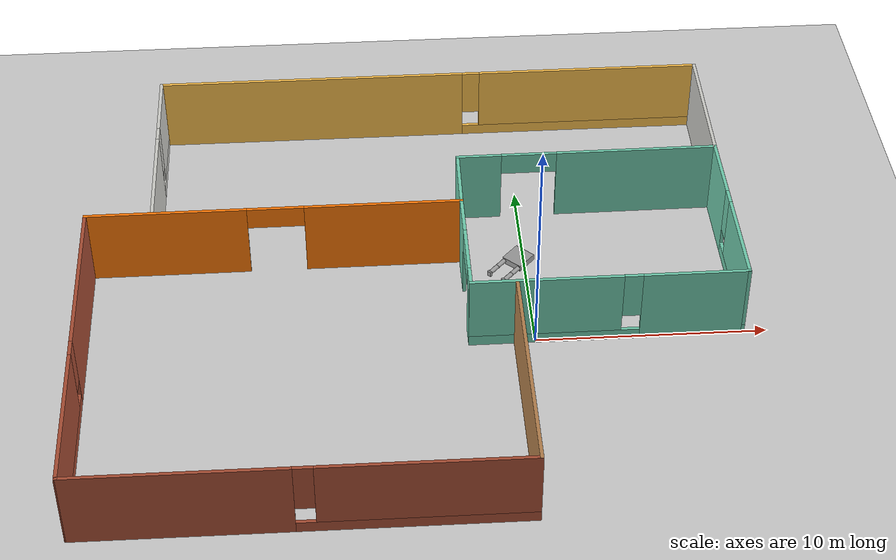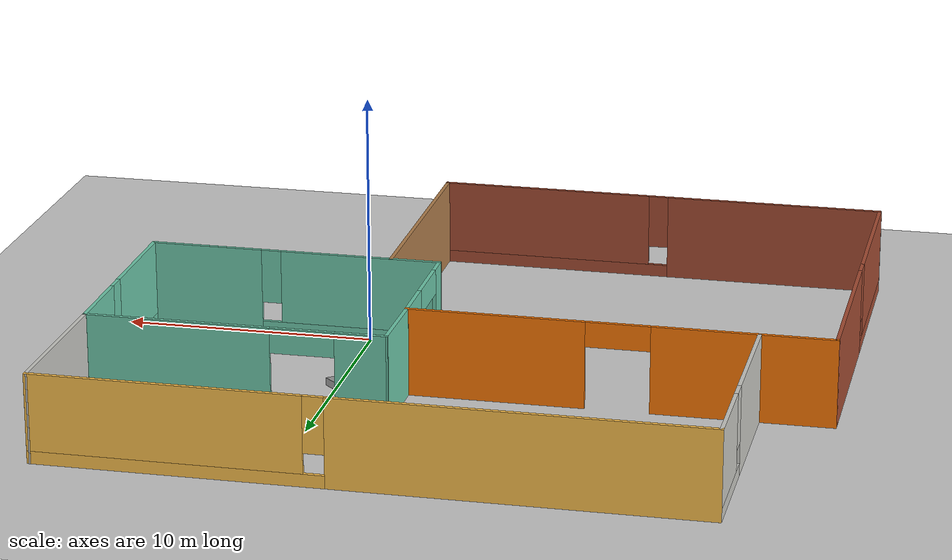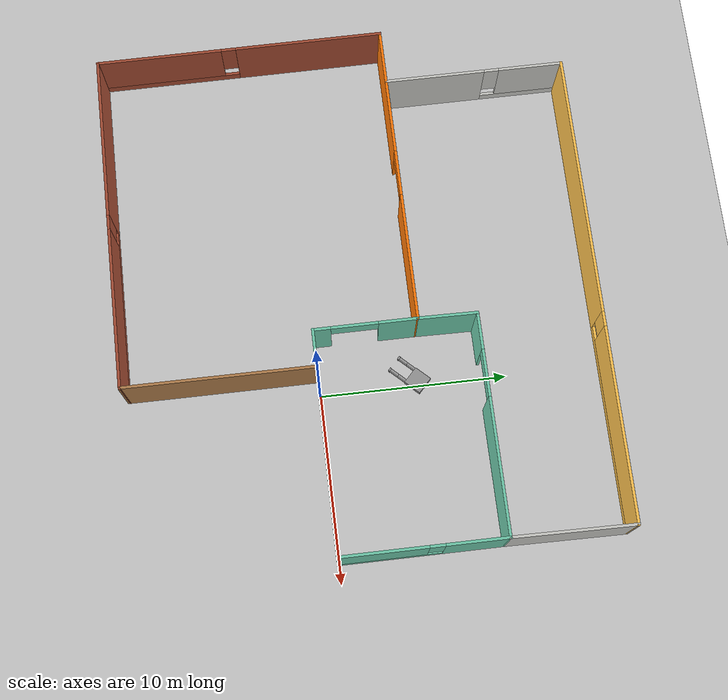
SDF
<sdf version="1.6">
 <world name="default">
  <model name="ground_plane">
   <static>1</static>
   <link name="link">
    <collision name="collision">
     <geometry><plane><normal>0 0 1</normal><size>100 100</size></plane></geometry>
     <surface><friction><ode><mu>100</mu><mu2>50</mu2></ode></friction></surface>
    </collision>
    <visual name="visual">
     <cast_shadows>0</cast_shadows>
     <geometry><plane><normal>0 0 1</normal><size>100 100</size></plane></geometry>
     <material>
      <script><uri>file://media/materials/scripts/gazebo.material</uri><name>Gazebo/Grey</name></script>
     </material>
    </visual>
   </link>
  </model>
  <model name="HumanoidRobot">
   <link name="link_0">
    <pose>-1.22891 3.55741 1.6 0 -0 0</pose>
    <inertial>
     <mass>1</mass>
     <inertia>
      <ixx>0.166667</ixx>
      <ixy>0</ixy>
      <ixz>0</ixz>
      <iyy>0.166667</iyy>
      <iyz>0</iyz>
      <izz>0.166667</izz>
     </inertia>
    </inertial>
    <visual name="visual">
     <geometry><box><size>0.3 1 1</size></box></geometry>
     <material>
      <lighting>1</lighting>
      <script><uri>file://media/materials/scripts/gazebo.material</uri><name>Gazebo/Grey</name></script>
      <shader type="pixel"><normal_map>__default__</normal_map></shader>
      <ambient>0.3 0.3 0.3 1</ambient>
      <diffuse>0.7 0.7 0.7 1</diffuse>
      <specular>0.01 0.01 0.01 1</specular>
      <emissive>0 0 0 1</emissive>
     </material>
    </visual>
    <collision name="collision">
     <geometry><box><size>0.3 1 1</size></box></geometry>
     <surface>
      <friction>
       <ode><mu>1</mu><mu2>1</mu2><fdir1>0 0 0</fdir1><slip1>0</slip1><slip2>0</slip2></ode>
       <torsional>
        <coefficient>1</coefficient>
        <patch_radius>0</patch_radius>
        <surface_radius>0</surface_radius>
        <use_patch_radius>1</use_patch_radius>
        <ode><slip>0</slip></ode>
       </torsional>
      </friction>
      <bounce><restitution_coefficient>0</restitution_coefficient><threshold>1e+06</threshold></bounce>
      <contact>
       <collide_without_contact>0</collide_without_contact>
       <collide_without_contact_bitmask>1</collide_without_contact_bitmask>
       <collide_bitmask>1</collide_bitmask>
       <ode>
        <soft_cfm>0</soft_cfm>
        <soft_erp>0.2</soft_erp>
        <kp>1e+13</kp>
        <kd>1</kd>
        <max_vel>0.01</max_vel>
        <min_depth>0</min_depth>
       </ode>
       <bullet>
        <split_impulse>1</split_impulse>
        <split_impulse_penetration_threshold>-0.01</split_impulse_penetration_threshold>
        <soft_cfm>0</soft_cfm>
        <soft_erp>0.2</soft_erp>
        <kp>1e+13</kp>
        <kd>1</kd>
       </bullet>
      </contact>
     </surface>
    </collision>
   </link>
   <link name="link_1">
    <pose>-1.22891 3.15741 0.849998 0 -0 0</pose>
    <inertial>
     <mass>1</mass>
     <inertia><ixx>0.145833</ixx><ixy>0</ixy><ixz>0</ixz><iyy>0.145833</iyy><iyz>0</iyz><izz>0.125</izz></inertia>
    </inertial>
    <visual name="visual">
     <geometry><cylinder><radius>0.1</radius><length>0.5</length></cylinder></geometry>
     <material>
      <lighting>1</lighting>
      <script><uri>file://media/materials/scripts/gazebo.material</uri><name>Gazebo/Grey</name></script>
      <shader type="pixel"><normal_map>__default__</normal_map></shader>
      <ambient>0.3 0.3 0.3 1</ambient>
      <diffuse>0.7 0.7 0.7 1</diffuse>
      <specular>0.01 0.01 0.01 1</specular>
      <emissive>0 0 0 1</emissive>
     </material>
    </visual>
    <collision name="collision">
     <geometry><cylinder><radius>0.1</radius><length>0.5</length></cylinder></geometry>
     <surface>
      <friction>
       <ode><mu>1</mu><mu2>1</mu2><fdir1>0 0 0</fdir1><slip1>0</slip1><slip2>0</slip2></ode>
       <torsional>
        <coefficient>1</coefficient>
        <patch_radius>0</patch_radius>
        <surface_radius>0</surface_radius>
        <use_patch_radius>1</use_patch_radius>
        <ode><slip>0</slip></ode>
       </torsional>
      </friction>
      <bounce><restitution_coefficient>0</restitution_coefficient><threshold>1e+06</threshold></bounce>
      <contact>
       <collide_without_contact>0</collide_without_contact>
       <collide_without_contact_bitmask>1</collide_without_contact_bitmask>
       <collide_bitmask>1</collide_bitmask>
       <ode>
        <soft_cfm>0</soft_cfm>
        <soft_erp>0.2</soft_erp>
        <kp>1e+13</kp>
        <kd>1</kd>
        <max_vel>0.01</max_vel>
        <min_depth>0</min_depth>
       </ode>
       <bullet>
        <split_impulse>1</split_impulse>
        <split_impulse_penetration_threshold>-0.01</split_impulse_penetration_threshold>
        <soft_cfm>0</soft_cfm>
        <soft_erp>0.2</soft_erp>
        <kp>1e+13</kp>
        <kd>1</kd>
       </bullet>
      </contact>
     </surface>
    </collision>
   </link>
   <link name="link_1_clone">
    <pose>-1.22891 3.95741 0.849998 0 -0 0</pose>
    <inertial>
     <mass>1</mass>
     <inertia><ixx>0.145833</ixx><ixy>0</ixy><ixz>0</ixz><iyy>0.145833</iyy><iyz>0</iyz><izz>0.125</izz></inertia>
    </inertial>
    <visual name="visual">
     <geometry><cylinder><radius>0.1</radius><length>0.5</length></cylinder></geometry>
     <material>
      <lighting>1</lighting>
      <script><uri>file://media/materials/scripts/gazebo.material</uri><name>Gazebo/Grey</name></script>
      <shader type="pixel"><normal_map>__default__</normal_map></shader>
      <ambient>0.3 0.3 0.3 1</ambient>
      <diffuse>0.7 0.7 0.7 1</diffuse>
      <specular>0.01 0.01 0.01 1</specular>
      <emissive>0 0 0 1</emissive>
     </material>
    </visual>
    <collision name="collision">
     <geometry><cylinder><radius>0.1</radius><length>0.5</length></cylinder></geometry>
     <surface>
      <friction>
       <ode><mu>1</mu><mu2>1</mu2><fdir1>0 0 0</fdir1><slip1>0</slip1><slip2>0</slip2></ode>
       <torsional>
        <coefficient>1</coefficient>
        <patch_radius>0</patch_radius>
        <surface_radius>0</surface_radius>
        <use_patch_radius>1</use_patch_radius>
        <ode><slip>0</slip></ode>
       </torsional>
      </friction>
      <bounce><restitution_coefficient>0</restitution_coefficient><threshold>1e+06</threshold></bounce>
      <contact>
       <collide_without_contact>0</collide_without_contact>
       <collide_without_contact_bitmask>1</collide_without_contact_bitmask>
       <collide_bitmask>1</collide_bitmask>
       <ode>
        <soft_cfm>0</soft_cfm>
        <soft_erp>0.2</soft_erp>
        <kp>1e+13</kp>
        <kd>1</kd>
        <max_vel>0.01</max_vel>
        <min_depth>0</min_depth>
       </ode>
       <bullet>
        <split_impulse>1</split_impulse>
        <split_impulse_penetration_threshold>-0.01</split_impulse_penetration_threshold>
        <soft_cfm>0</soft_cfm>
        <soft_erp>0.2</soft_erp>
        <kp>1e+13</kp>
        <kd>1</kd>
       </bullet>
      </contact>
     </surface>
    </collision>
   </link>
   <link name="link_1_clone_0">
    <pose>-1.22891 3.15741 0.349998 0 -0 0</pose>
    <inertial>
     <mass>1</mass>
     <inertia><ixx>0.145833</ixx><ixy>0</ixy><ixz>0</ixz><iyy>0.145833</iyy><iyz>0</iyz><izz>0.125</izz></inertia>
    </inertial>
    <visual name="visual">
     <geometry><cylinder><radius>0.1</radius><length>0.5</length></cylinder></geometry>
     <material>
      <lighting>1</lighting>
      <script><uri>file://media/materials/scripts/gazebo.material</uri><name>Gazebo/Grey</name></script>
      <shader type="pixel"><normal_map>__default__</normal_map></shader>
      <ambient>0.3 0.3 0.3 1</ambient>
      <diffuse>0.7 0.7 0.7 1</diffuse>
      <specular>0.01 0.01 0.01 1</specular>
      <emissive>0 0 0 1</emissive>
     </material>
    </visual>
    <collision name="collision">
     <geometry><cylinder><radius>0.1</radius><length>0.5</length></cylinder></geometry>
     <surface>
      <friction>
       <ode><mu>1</mu><mu2>1</mu2><fdir1>0 0 0</fdir1><slip1>0</slip1><slip2>0</slip2></ode>
       <torsional>
        <coefficient>1</coefficient>
        <patch_radius>0</patch_radius>
        <surface_radius>0</surface_radius>
        <use_patch_radius>1</use_patch_radius>
        <ode><slip>0</slip></ode>
       </torsional>
      </friction>
      <bounce><restitution_coefficient>0</restitution_coefficient><threshold>1e+06</threshold></bounce>
      <contact>
       <collide_without_contact>0</collide_without_contact>
       <collide_without_contact_bitmask>1</collide_without_contact_bitmask>
       <collide_bitmask>1</collide_bitmask>
       <ode>
        <soft_cfm>0</soft_cfm>
        <soft_erp>0.2</soft_erp>
        <kp>1e+13</kp>
        <kd>1</kd>
        <max_vel>0.01</max_vel>
        <min_depth>0</min_depth>
       </ode>
       <bullet>
        <split_impulse>1</split_impulse>
        <split_impulse_penetration_threshold>-0.01</split_impulse_penetration_threshold>
        <soft_cfm>0</soft_cfm>
        <soft_erp>0.2</soft_erp>
        <kp>1e+13</kp>
        <kd>1</kd>
       </bullet>
      </contact>
     </surface>
    </collision>
   </link>
   <link name="link_1_clone_1">
    <pose>-1.22891 3.95741 0.349998 0 -0 0</pose>
    <inertial>
     <mass>1</mass>
     <inertia><ixx>0.145833</ixx><ixy>0</ixy><ixz>0</ixz><iyy>0.145833</iyy><iyz>0</iyz><izz>0.125</izz></inertia>
    </inertial>
    <visual name="visual">
     <geometry><cylinder><radius>0.1</radius><length>0.5</length></cylinder></geometry>
     <material>
      <lighting>1</lighting>
      <script><uri>file://media/materials/scripts/gazebo.material</uri><name>Gazebo/Grey</name></script>
      <shader type="pixel"><normal_map>__default__</normal_map></shader>
      <ambient>0.3 0.3 0.3 1</ambient>
      <diffuse>0.7 0.7 0.7 1</diffuse>
      <specular>0.01 0.01 0.01 1</specular>
      <emissive>0 0 0 1</emissive>
     </material>
    </visual>
    <collision name="collision">
     <geometry><cylinder><radius>0.1</radius><length>0.5</length></cylinder></geometry>
     <surface>
      <friction>
       <ode><mu>1</mu><mu2>1</mu2><fdir1>0 0 0</fdir1><slip1>0</slip1><slip2>0</slip2></ode>
       <torsional>
        <coefficient>1</coefficient>
        <patch_radius>0</patch_radius>
        <surface_radius>0</surface_radius>
        <use_patch_radius>1</use_patch_radius>
        <ode><slip>0</slip></ode>
       </torsional>
      </friction>
      <bounce><restitution_coefficient>0</restitution_coefficient><threshold>1e+06</threshold></bounce>
      <contact>
       <collide_without_contact>0</collide_without_contact>
       <collide_without_contact_bitmask>1</collide_without_contact_bitmask>
       <collide_bitmask>1</collide_bitmask>
       <ode>
        <soft_cfm>0</soft_cfm>
        <soft_erp>0.2</soft_erp>
        <kp>1e+13</kp>
        <kd>1</kd>
        <max_vel>0.01</max_vel>
        <min_depth>0</min_depth>
       </ode>
       <bullet>
        <split_impulse>1</split_impulse>
        <split_impulse_penetration_threshold>-0.01</split_impulse_penetration_threshold>
        <soft_cfm>0</soft_cfm>
        <soft_erp>0.2</soft_erp>
        <kp>1e+13</kp>
        <kd>1</kd>
       </bullet>
      </contact>
     </surface>
    </collision>
   </link>
   <link name="link_4">
    <pose>-1.07891 3.95741 0.049998 0 -0 0</pose>
    <inertial>
     <mass>1</mass>
     <inertia>
      <ixx>0.166667</ixx>
      <ixy>0</ixy>
      <ixz>0</ixz>
      <iyy>0.166667</iyy>
      <iyz>0</iyz>
      <izz>0.166667</izz>
     </inertia>
    </inertial>
    <visual name="visual">
     <geometry><box><size>0.5 0.2 0.1</size></box></geometry>
     <material>
      <lighting>1</lighting>
      <script><uri>file://media/materials/scripts/gazebo.material</uri><name>Gazebo/Grey</name></script>
      <shader type="pixel"><normal_map>__default__</normal_map></shader>
      <ambient>0.3 0.3 0.3 1</ambient>
      <diffuse>0.7 0.7 0.7 1</diffuse>
      <specular>0.01 0.01 0.01 1</specular>
      <emissive>0 0 0 1</emissive>
     </material>
    </visual>
    <collision name="collision">
     <geometry><box><size>0.5 0.2 0.1</size></box></geometry>
     <surface>
      <friction>
       <ode><mu>1</mu><mu2>1</mu2><fdir1>0 0 0</fdir1><slip1>0</slip1><slip2>0</slip2></ode>
       <torsional>
        <coefficient>1</coefficient>
        <patch_radius>0</patch_radius>
        <surface_radius>0</surface_radius>
        <use_patch_radius>1</use_patch_radius>
        <ode><slip>0</slip></ode>
       </torsional>
      </friction>
      <bounce><restitution_coefficient>0</restitution_coefficient><threshold>1e+06</threshold></bounce>
      <contact>
       <collide_without_contact>0</collide_without_contact>
       <collide_without_contact_bitmask>1</collide_without_contact_bitmask>
       <collide_bitmask>1</collide_bitmask>
       <ode>
        <soft_cfm>0</soft_cfm>
        <soft_erp>0.2</soft_erp>
        <kp>1e+13</kp>
        <kd>1</kd>
        <max_vel>0.01</max_vel>
        <min_depth>0</min_depth>
       </ode>
       <bullet>
        <split_impulse>1</split_impulse>
        <split_impulse_penetration_threshold>-0.01</split_impulse_penetration_threshold>
        <soft_cfm>0</soft_cfm>
        <soft_erp>0.2</soft_erp>
        <kp>1e+13</kp>
        <kd>1</kd>
       </bullet>
      </contact>
     </surface>
    </collision>
   </link>
   <link name="link_4_clone">
    <pose>-1.07891 3.15741 0.049998 0 -0 0</pose>
    <inertial>
     <mass>1</mass>
     <inertia>
      <ixx>0.166667</ixx>
      <ixy>0</ixy>
      <ixz>0</ixz>
      <iyy>0.166667</iyy>
      <iyz>0</iyz>
      <izz>0.166667</izz>
     </inertia>
    </inertial>
    <visual name="visual">
     <geometry><box><size>0.5 0.2 0.1</size></box></geometry>
     <material>
      <lighting>1</lighting>
      <script><uri>file://media/materials/scripts/gazebo.material</uri><name>Gazebo/Grey</name></script>
      <shader type="pixel"><normal_map>__default__</normal_map></shader>
      <ambient>0.3 0.3 0.3 1</ambient>
      <diffuse>0.7 0.7 0.7 1</diffuse>
      <specular>0.01 0.01 0.01 1</specular>
      <emissive>0 0 0 1</emissive>
     </material>
    </visual>
    <collision name="collision">
     <geometry><box><size>0.5 0.2 0.1</size></box></geometry>
     <surface>
      <friction>
       <ode><mu>1</mu><mu2>1</mu2><fdir1>0 0 0</fdir1><slip1>0</slip1><slip2>0</slip2></ode>
       <torsional>
        <coefficient>1</coefficient>
        <patch_radius>0</patch_radius>
        <surface_radius>0</surface_radius>
        <use_patch_radius>1</use_patch_radius>
        <ode><slip>0</slip></ode>
       </torsional>
      </friction>
      <bounce><restitution_coefficient>0</restitution_coefficient><threshold>1e+06</threshold></bounce>
      <contact>
       <collide_without_contact>0</collide_without_contact>
       <collide_without_contact_bitmask>1</collide_without_contact_bitmask>
       <collide_bitmask>1</collide_bitmask>
       <ode>
        <soft_cfm>0</soft_cfm>
        <soft_erp>0.2</soft_erp>
        <kp>1e+13</kp>
        <kd>1</kd>
        <max_vel>0.01</max_vel>
        <min_depth>0</min_depth>
       </ode>
       <bullet>
        <split_impulse>1</split_impulse>
        <split_impulse_penetration_threshold>-0.01</split_impulse_penetration_threshold>
        <soft_cfm>0</soft_cfm>
        <soft_erp>0.2</soft_erp>
        <kp>1e+13</kp>
        <kd>1</kd>
       </bullet>
      </contact>
     </surface>
    </collision>
   </link>
   <joint name="link_0_JOINT_0" type="revolute">
    <parent>link_0</parent>
    <child>link_1</child>
    <pose>0 0 0.25 0 0.03 0</pose>
    <axis>
     <xyz>0 0 1</xyz>
     <use_parent_model_frame>1</use_parent_model_frame>
     <limit>
      <lower>-1.79769e+308</lower>
      <upper>1.79769e+308</upper>
      <effort>-1</effort>
      <velocity>-1</velocity>
     </limit>
     <dynamics>
      <spring_reference>0</spring_reference>
      <spring_stiffness>0</spring_stiffness>
      <damping>0</damping>
      <friction>0</friction>
     </dynamics>
    </axis>
    <physics>
     <ode><limit><cfm>0</cfm><erp>0.2</erp></limit><suspension><cfm>0</cfm><erp>0.2</erp></suspension></ode>
    </physics>
   </joint>
   <joint name="link_0_JOINT_1" type="revolute">
    <parent>link_0</parent>
    <child>link_1_clone</child>
    <pose>0 0 0.25 0 -0 0</pose>
    <axis>
     <xyz>0 0 1</xyz>
     <use_parent_model_frame>0</use_parent_model_frame>
     <limit>
      <lower>-1.79769e+308</lower>
      <upper>1.79769e+308</upper>
      <effort>-1</effort>
      <velocity>-1</velocity>
     </limit>
     <dynamics>
      <spring_reference>0</spring_reference>
      <spring_stiffness>0</spring_stiffness>
      <damping>0</damping>
      <friction>0</friction>
     </dynamics>
    </axis>
    <physics>
     <ode><limit><cfm>0</cfm><erp>0.2</erp></limit><suspension><cfm>0</cfm><erp>0.2</erp></suspension></ode>
    </physics>
   </joint>
   <joint name="link_1_JOINT_2" type="revolute">
    <parent>link_1</parent>
    <child>link_1_clone_0</child>
    <pose>0 0 0.25 0 -0 0</pose>
    <axis>
     <xyz>0 0 1</xyz>
     <use_parent_model_frame>0</use_parent_model_frame>
     <limit>
      <lower>-1.79769e+308</lower>
      <upper>1.79769e+308</upper>
      <effort>-1</effort>
      <velocity>-1</velocity>
     </limit>
     <dynamics>
      <spring_reference>0</spring_reference>
      <spring_stiffness>0</spring_stiffness>
      <damping>0</damping>
      <friction>0</friction>
     </dynamics>
    </axis>
    <physics>
     <ode><limit><cfm>0</cfm><erp>0.2</erp></limit><suspension><cfm>0</cfm><erp>0.2</erp></suspension></ode>
    </physics>
   </joint>
   <joint name="link_1_clone_0_JOINT_4" type="revolute">
    <parent>link_1_clone_0</parent>
    <child>link_4_clone</child>
    <pose>-0.15 0 0 0 -0 0</pose>
    <axis>
     <xyz>0 0 1</xyz>
     <use_parent_model_frame>0</use_parent_model_frame>
     <limit>
      <lower>-1.79769e+308</lower>
      <upper>1.79769e+308</upper>
      <effort>-1</effort>
      <velocity>-1</velocity>
     </limit>
     <dynamics>
      <spring_reference>0</spring_reference>
      <spring_stiffness>0</spring_stiffness>
      <damping>0</damping>
      <friction>0</friction>
     </dynamics>
    </axis>
    <physics>
     <ode><limit><cfm>0</cfm><erp>0.2</erp></limit><suspension><cfm>0</cfm><erp>0.2</erp></suspension></ode>
    </physics>
   </joint>
   <joint name="link_1_clone_1_JOINT_5" type="revolute">
    <parent>link_1_clone_1</parent>
    <child>link_4</child>
    <pose>-0.15 0 0 0 -0 0</pose>
    <axis>
     <xyz>0 0 1</xyz>
     <use_parent_model_frame>0</use_parent_model_frame>
     <limit>
      <lower>-1.79769e+308</lower>
      <upper>1.79769e+308</upper>
      <effort>-1</effort>
      <velocity>-1</velocity>
     </limit>
     <dynamics>
      <spring_reference>0</spring_reference>
      <spring_stiffness>0</spring_stiffness>
      <damping>0</damping>
     </dynamics>
    </axis>
    <physics>
     <ode><limit><cfm>0</cfm><erp>0.2</erp></limit><suspension><cfm>0</cfm><erp>0.2</erp></suspension></ode>
    </physics>
   </joint>
   <joint name="link_1_clone_JOINT_3" type="revolute">
    <parent>link_1_clone</parent>
    <child>link_1_clone_1</child>
    <pose>0 0 0.25 0 -0 0</pose>
    <axis>
     <xyz>1 0 0</xyz>
     <use_parent_model_frame>0</use_parent_model_frame>
     <limit>
      <lower>-1.79769e+308</lower>
      <upper>1.79769e+308</upper>
      <effort>-1</effort>
      <velocity>-1</velocity>
     </limit>
     <dynamics>
      <spring_reference>0</spring_reference>
      <spring_stiffness>0</spring_stiffness>
      <damping>0</damping>
      <friction>0</friction>
     </dynamics>
    </axis>
    <physics>
     <ode><limit><cfm>0</cfm><erp>0.2</erp></limit><suspension><cfm>0</cfm><erp>0.2</erp></suspension></ode>
    </physics>
   </joint>
   <static>0</static>
   <pose>1.24422 1.68824 -1.12773 -0.000154 1.52537 0.807115</pose>
  </model>
  <model name="Building">
   <pose>-5.10276 2.4344 0 0 -0 0</pose>
   <link name="Wall_11">
    <pose>14.0376 1.85918 0 0 0 -1.5708</pose>
    <visual name="Wall_11_Visual_0">
     <pose>-2.74243 0 1.75 0 -0 0</pose>
     <geometry><box><size>3.32963 0.15 3.5</size></box></geometry>
     <material>
      <script><uri>file://media/materials/scripts/gazebo.material</uri><name>Gazebo/Grey</name></script>
      <ambient>0.435294 0.796078 0.67451 1</ambient>
     </material>
     <meta><layer>0</layer></meta>
    </visual>
    <collision name="Wall_11_Collision_0">
     <geometry><box><size>3.32963 0.15 3.5</size></box></geometry>
     <pose>-2.74243 0 1.75 0 -0 0</pose>
    </collision>
    <visual name="Wall_11_Visual_1">
     <pose>1.66481 0 0.25 0 -0 0</pose>
     <geometry><box><size>5.48487 0.15 0.5</size></box></geometry>
     <material>
      <script><uri>file://media/materials/scripts/gazebo.material</uri><name>Gazebo/Grey</name></script>
      <ambient>0.435294 0.796078 0.67451 1</ambient>
     </material>
     <meta><layer>0</layer></meta>
    </visual>
    <collision name="Wall_11_Collision_1">
     <geometry><box><size>5.48487 0.15 0.5</size></box></geometry>
     <pose>1.66481 0 0.25 0 -0 0</pose>
    </collision>
    <visual name="Wall_11_Visual_2">
     <pose>2.06481 0 2 0 -0 0</pose>
     <geometry><box><size>4.68487 0.15 3</size></box></geometry>
     <material>
      <script><uri>file://media/materials/scripts/gazebo.material</uri><name>Gazebo/Grey</name></script>
      <ambient>0.435294 0.796078 0.67451 1</ambient>
     </material>
     <meta><layer>0</layer></meta>
    </visual>
    <collision name="Wall_11_Collision_2">
     <geometry><box><size>4.68487 0.15 3</size></box></geometry>
     <pose>2.06481 0 2 0 -0 0</pose>
    </collision>
    <visual name="Wall_11_Visual_3">
     <pose>-0.677619 0 2.4 0 -0 0</pose>
     <geometry><box><size>0.8 0.15 2.2</size></box></geometry>
     <material>
      <script><uri>file://media/materials/scripts/gazebo.material</uri><name>Gazebo/Grey</name></script>
      <ambient>0.435294 0.796078 0.67451 1</ambient>
     </material>
     <meta><layer>0</layer></meta>
    </visual>
    <collision name="Wall_11_Collision_3">
     <geometry><box><size>0.8 0.15 2.2</size></box></geometry>
     <pose>-0.677619 0 2.4 0 -0 0</pose>
    </collision>
   </link>
   <link name="Wall_12">
    <pose>8.15813 -2.47282 0 0 -0 3.14159</pose>
    <visual name="Wall_12_Visual_0">
     <pose>-3.67134 0 1.75 0 -0 0</pose>
     <geometry><box><size>4.56647 0.15 3.5</size></box></geometry>
     <material>
      <script><uri>file://media/materials/scripts/gazebo.material</uri><name>Gazebo/Grey</name></script>
      <ambient>0.435294 0.796078 0.67451 1</ambient>
     </material>
     <meta><layer>0</layer></meta>
    </visual>
    <collision name="Wall_12_Collision_0">
     <geometry><box><size>4.56647 0.15 3.5</size></box></geometry>
     <pose>-3.67134 0 1.75 0 -0 0</pose>
    </collision>
    <visual name="Wall_12_Visual_1">
     <pose>2.28324 0 0.25 0 -0 0</pose>
     <geometry><box><size>7.34269 0.15 0.5</size></box></geometry>
     <material>
      <script><uri>file://media/materials/scripts/gazebo.material</uri><name>Gazebo/Grey</name></script>
      <ambient>0.435294 0.796078 0.67451 1</ambient>
     </material>
     <meta><layer>0</layer></meta>
    </visual>
    <collision name="Wall_12_Collision_1">
     <geometry><box><size>7.34269 0.15 0.5</size></box></geometry>
     <pose>2.28324 0 0.25 0 -0 0</pose>
    </collision>
    <visual name="Wall_12_Visual_2">
     <pose>2.68324 0 2 0 -0 0</pose>
     <geometry><box><size>6.54269 0.15 3</size></box></geometry>
     <material>
      <script><uri>file://media/materials/scripts/gazebo.material</uri><name>Gazebo/Grey</name></script>
      <ambient>0.435294 0.796078 0.67451 1</ambient>
     </material>
     <meta><layer>0</layer></meta>
    </visual>
    <collision name="Wall_12_Collision_2">
     <geometry><box><size>6.54269 0.15 3</size></box></geometry>
     <pose>2.68324 0 2 0 -0 0</pose>
    </collision>
    <visual name="Wall_12_Visual_3">
     <pose>-0.988107 0 2.4 0 -0 0</pose>
     <geometry><box><size>0.8 0.15 2.2</size></box></geometry>
     <material>
      <script><uri>file://media/materials/scripts/gazebo.material</uri><name>Gazebo/Grey</name></script>
      <ambient>0.435294 0.796078 0.67451 1</ambient>
     </material>
     <meta><layer>0</layer></meta>
    </visual>
    <collision name="Wall_12_Collision_3">
     <geometry><box><size>0.8 0.15 2.2</size></box></geometry>
     <pose>-0.988107 0 2.4 0 -0 0</pose>
    </collision>
   </link>
   <link name="Wall_14">
    <collision name="Wall_14_Collision">
     <geometry><box><size>10.2635 0.15 3.5</size></box></geometry>
     <pose>0 0 1.75 0 -0 0</pose>
    </collision>
    <visual name="Wall_14_Visual">
     <pose>0 0 1.75 0 -0 0</pose>
     <geometry><box><size>10.2635 0.15 3.5</size></box></geometry>
     <material>
      <script><uri>file://media/materials/scripts/gazebo.material</uri><name>Gazebo/Wood</name></script>
      <ambient>0.996078 0.47451 0.0196078 1</ambient>
     </material>
     <meta><layer>0</layer></meta>
    </visual>
    <pose>4.22413 -7.58082 0 0 0 -1.57248</pose>
   </link>
   <link name="Wall_16">
    <pose>-14.0979 -4.78882 0 0 0 -1.56739</pose>
    <visual name="Wall_16_Visual_0">
     <pose>-3.8228 0 1.75 0 -0 0</pose>
     <geometry><box><size>8.0561 0.15 3.5</size></box></geometry>
     <material>
      <script><uri>file://media/materials/scripts/gazebo.material</uri><name>Gazebo/Bricks</name></script>
      <ambient>0.996078 0.47451 0.0196078 1</ambient>
     </material>
     <meta><layer>0</layer></meta>
    </visual>
    <collision name="Wall_16_Collision_0">
     <geometry><box><size>8.0561 0.15 3.5</size></box></geometry>
     <pose>-3.8228 0 1.75 0 -0 0</pose>
    </collision>
    <visual name="Wall_16_Visual_1">
     <pose>4.02805 0 0.25 0 -0 0</pose>
     <geometry><box><size>7.6456 0.15 0.5</size></box></geometry>
     <material>
      <script><uri>file://media/materials/scripts/gazebo.material</uri><name>Gazebo/Bricks</name></script>
      <ambient>0.996078 0.47451 0.0196078 1</ambient>
     </material>
     <meta><layer>0</layer></meta>
    </visual>
    <collision name="Wall_16_Collision_1">
     <geometry><box><size>7.6456 0.15 0.5</size></box></geometry>
     <pose>4.02805 0 0.25 0 -0 0</pose>
    </collision>
    <visual name="Wall_16_Visual_2">
     <pose>4.42805 0 2 0 -0 0</pose>
     <geometry><box><size>6.8456 0.15 3</size></box></geometry>
     <material>
      <script><uri>file://media/materials/scripts/gazebo.material</uri><name>Gazebo/Bricks</name></script>
      <ambient>0.996078 0.47451 0.0196078 1</ambient>
     </material>
     <meta><layer>0</layer></meta>
    </visual>
    <collision name="Wall_16_Collision_2">
     <geometry><box><size>6.8456 0.15 3</size></box></geometry>
     <pose>4.42805 0 2 0 -0 0</pose>
    </collision>
    <visual name="Wall_16_Visual_3">
     <pose>0.605252 0 2.4 0 -0 0</pose>
     <geometry><box><size>0.8 0.15 2.2</size></box></geometry>
     <material>
      <script><uri>file://media/materials/scripts/gazebo.material</uri><name>Gazebo/Bricks</name></script>
      <ambient>0.996078 0.47451 0.0196078 1</ambient>
     </material>
     <meta><layer>0</layer></meta>
    </visual>
    <collision name="Wall_16_Collision_3">
     <geometry><box><size>0.8 0.15 2.2</size></box></geometry>
     <pose>0.605252 0 2.4 0 -0 0</pose>
    </collision>
   </link>
   <link name="Wall_17">
    <pose>-4.92787 -12.6013 0 0 0 -0.003992</pose>
    <visual name="Wall_17_Visual_0">
     <pose>-4.76402 0 1.75 0 -0 0</pose>
     <geometry><box><size>8.909 0.15 3.5</size></box></geometry>
     <material>
      <script><uri>file://media/materials/scripts/gazebo.material</uri><name>Gazebo/Bricks</name></script>
      <ambient>0.996078 0.47451 0.0196078 1</ambient>
     </material>
     <meta><layer>0</layer></meta>
    </visual>
    <collision name="Wall_17_Collision_0">
     <geometry><box><size>8.909 0.15 3.5</size></box></geometry>
     <pose>-4.76402 0 1.75 0 -0 0</pose>
    </collision>
    <visual name="Wall_17_Visual_1">
     <pose>4.4545 0 0.25 0 -0 0</pose>
     <geometry><box><size>9.52804 0.15 0.5</size></box></geometry>
     <material>
      <script><uri>file://media/materials/scripts/gazebo.material</uri><name>Gazebo/Bricks</name></script>
      <ambient>0.996078 0.47451 0.0196078 1</ambient>
     </material>
     <meta><layer>0</layer></meta>
    </visual>
    <collision name="Wall_17_Collision_1">
     <geometry><box><size>9.52804 0.15 0.5</size></box></geometry>
     <pose>4.4545 0 0.25 0 -0 0</pose>
    </collision>
    <visual name="Wall_17_Visual_2">
     <pose>4.8545 0 2 0 -0 0</pose>
     <geometry><box><size>8.72804 0.15 3</size></box></geometry>
     <material>
      <script><uri>file://media/materials/scripts/gazebo.material</uri><name>Gazebo/Bricks</name></script>
      <ambient>0.996078 0.47451 0.0196078 1</ambient>
     </material>
     <meta><layer>0</layer></meta>
    </visual>
    <collision name="Wall_17_Collision_2">
     <geometry><box><size>8.72804 0.15 3</size></box></geometry>
     <pose>4.8545 0 2 0 -0 0</pose>
    </collision>
    <visual name="Wall_17_Visual_3">
     <pose>0.090482 0 2.4 0 -0 0</pose>
     <geometry><box><size>0.8 0.15 2.2</size></box></geometry>
     <material>
      <script><uri>file://media/materials/scripts/gazebo.material</uri><name>Gazebo/Bricks</name></script>
      <ambient>0.996078 0.47451 0.0196078 1</ambient>
     </material>
     <meta><layer>0</layer></meta>
    </visual>
    <collision name="Wall_17_Collision_3">
     <geometry><box><size>0.8 0.15 2.2</size></box></geometry>
     <pose>0.090482 0 2.4 0 -0 0</pose>
    </collision>
   </link>
   <link name="Wall_19">
    <pose>-11.2264 7.83718 0 0 -0 1.5708</pose>
    <visual name="Wall_19_Visual_0">
     <pose>-2.16282 0 1.75 0 -0 0</pose>
     <geometry><box><size>5.42436 0.15 3.5</size></box></geometry>
     <material>
      <script><uri>file://media/materials/scripts/gazebo.material</uri><name>Gazebo/CeilingTiled</name></script>
      <ambient>1 0.764706 0.305882 1</ambient>
     </material>
     <meta><layer>0</layer></meta>
    </visual>
    <collision name="Wall_19_Collision_0">
     <geometry><box><size>5.42436 0.15 3.5</size></box></geometry>
     <pose>-2.16282 0 1.75 0 -0 0</pose>
    </collision>
    <visual name="Wall_19_Visual_1">
     <pose>2.71218 0 0.25 0 -0 0</pose>
     <geometry><box><size>4.32564 0.15 0.5</size></box></geometry>
     <material>
      <script><uri>file://media/materials/scripts/gazebo.material</uri><name>Gazebo/CeilingTiled</name></script>
      <ambient>1 0.764706 0.305882 1</ambient>
     </material>
     <meta><layer>0</layer></meta>
    </visual>
    <collision name="Wall_19_Collision_1">
     <geometry><box><size>4.32564 0.15 0.5</size></box></geometry>
     <pose>2.71218 0 0.25 0 -0 0</pose>
    </collision>
    <visual name="Wall_19_Visual_2">
     <pose>3.11218 0 2 0 -0 0</pose>
     <geometry><box><size>3.52564 0.15 3</size></box></geometry>
     <material>
      <script><uri>file://media/materials/scripts/gazebo.material</uri><name>Gazebo/CeilingTiled</name></script>
      <ambient>1 0.764706 0.305882 1</ambient>
     </material>
     <meta><layer>0</layer></meta>
    </visual>
    <collision name="Wall_19_Collision_2">
     <geometry><box><size>3.52564 0.15 3</size></box></geometry>
     <pose>3.11218 0 2 0 -0 0</pose>
    </collision>
    <visual name="Wall_19_Visual_3">
     <pose>0.949362 0 2.4 0 -0 0</pose>
     <geometry><box><size>0.8 0.15 2.2</size></box></geometry>
     <material>
      <script><uri>file://media/materials/scripts/gazebo.material</uri><name>Gazebo/CeilingTiled</name></script>
      <ambient>1 0.764706 0.305882 1</ambient>
     </material>
     <meta><layer>0</layer></meta>
    </visual>
    <collision name="Wall_19_Collision_3">
     <geometry><box><size>0.8 0.15 2.2</size></box></geometry>
     <pose>0.949362 0 2.4 0 -0 0</pose>
    </collision>
   </link>
   <link name="Wall_20">
    <pose>1.44863 12.6372 0 0 -0 0</pose>
    <visual name="Wall_20_Visual_0">
     <pose>-5.59643 0 1.75 0 -0 0</pose>
     <geometry><box><size>14.3071 0.15 3.5</size></box></geometry>
     <material>
      <script><uri>file://media/materials/scripts/gazebo.material</uri><name>Gazebo/Grey</name></script>
      <ambient>1 0.764706 0.305882 1</ambient>
     </material>
     <meta><layer>0</layer></meta>
    </visual>
    <collision name="Wall_20_Collision_0">
     <geometry><box><size>14.3071 0.15 3.5</size></box></geometry>
     <pose>-5.59643 0 1.75 0 -0 0</pose>
    </collision>
    <visual name="Wall_20_Visual_1">
     <pose>7.15357 0 0.25 0 -0 0</pose>
     <geometry><box><size>11.1929 0.15 0.5</size></box></geometry>
     <material>
      <script><uri>file://media/materials/scripts/gazebo.material</uri><name>Gazebo/Grey</name></script>
      <ambient>1 0.764706 0.305882 1</ambient>
     </material>
     <meta><layer>0</layer></meta>
    </visual>
    <collision name="Wall_20_Collision_1">
     <geometry><box><size>11.1929 0.15 0.5</size></box></geometry>
     <pose>7.15357 0 0.25 0 -0 0</pose>
    </collision>
    <visual name="Wall_20_Visual_2">
     <pose>7.55357 0 2 0 -0 0</pose>
     <geometry><box><size>10.3929 0.15 3</size></box></geometry>
     <material>
      <script><uri>file://media/materials/scripts/gazebo.material</uri><name>Gazebo/Grey</name></script>
      <ambient>1 0.764706 0.305882 1</ambient>
     </material>
     <meta><layer>0</layer></meta>
    </visual>
    <collision name="Wall_20_Collision_2">
     <geometry><box><size>10.3929 0.15 3</size></box></geometry>
     <pose>7.55357 0 2 0 -0 0</pose>
    </collision>
    <visual name="Wall_20_Visual_3">
     <pose>1.95713 0 2.4 0 -0 0</pose>
     <geometry><box><size>0.8 0.15 2.2</size></box></geometry>
     <material>
      <script><uri>file://media/materials/scripts/gazebo.material</uri><name>Gazebo/Grey</name></script>
      <ambient>1 0.764706 0.305882 1</ambient>
     </material>
     <meta><layer>0</layer></meta>
    </visual>
    <collision name="Wall_20_Collision_3">
     <geometry><box><size>0.8 0.15 2.2</size></box></geometry>
     <pose>1.95713 0 2.4 0 -0 0</pose>
    </collision>
   </link>
   <link name="Wall_21">
    <collision name="Wall_21_Collision">
     <geometry><box><size>6.59647 0.15 3.5</size></box></geometry>
     <pose>0 0 1.75 0 -0 0</pose>
    </collision>
    <visual name="Wall_21_Visual">
     <pose>0 0 1.75 0 -0 0</pose>
     <geometry><box><size>6.59647 0.15 3.5</size></box></geometry>
     <material>
      <script><uri>file://media/materials/scripts/gazebo.material</uri><name>Gazebo/CeilingTiled</name></script>
      <ambient>1 0.764706 0.305882 1</ambient>
     </material>
     <meta><layer>0</layer></meta>
    </visual>
    <pose>14.0806 9.41418 0 0 0 -1.58414</pose>
   </link>
   <link name="Wall_5">
    <pose>-5.92287 3.00718 0 0 -0 0.002439</pose>
    <visual name="Wall_5_Visual_0">
     <pose>-4.73677 0 1.75 0 -0 0</pose>
     <geometry><box><size>7.07951 0.15 3.5</size></box></geometry>
     <material>
      <script><uri>file://media/materials/scripts/gazebo.material</uri><name>Gazebo/Grey</name></script>
      <ambient>0.996078 0.47451 0.0196078 1</ambient>
     </material>
     <meta><layer>0</layer></meta>
    </visual>
    <collision name="Wall_5_Collision_0">
     <geometry><box><size>7.07951 0.15 3.5</size></box></geometry>
     <pose>-4.73677 0 1.75 0 -0 0</pose>
    </collision>
    <visual name="Wall_5_Visual_1">
     <pose>4.78975 0 1.75 0 -0 0</pose>
     <geometry><box><size>6.97354 0.15 3.5</size></box></geometry>
     <material>
      <script><uri>file://media/materials/scripts/gazebo.material</uri><name>Gazebo/Grey</name></script>
      <ambient>0.996078 0.47451 0.0196078 1</ambient>
     </material>
     <meta><layer>0</layer></meta>
    </visual>
    <collision name="Wall_5_Collision_1">
     <geometry><box><size>6.97354 0.15 3.5</size></box></geometry>
     <pose>4.78975 0 1.75 0 -0 0</pose>
    </collision>
    <visual name="Wall_5_Visual_2">
     <pose>0.052984 0 3 0 -0 0</pose>
     <geometry><box><size>2.5 0.15 1</size></box></geometry>
     <material>
      <script><uri>file://media/materials/scripts/gazebo.material</uri><name>Gazebo/Grey</name></script>
      <ambient>0.996078 0.47451 0.0196078 1</ambient>
     </material>
     <meta><layer>0</layer></meta>
    </visual>
    <collision name="Wall_5_Collision_2">
     <geometry><box><size>2.5 0.15 1</size></box></geometry>
     <pose>0.052984 0 3 0 -0 0</pose>
    </collision>
   </link>
   <link name="Wall_6">
    <pose>2.27863 0.352177 0 0 0 -1.5708</pose>
    <visual name="Wall_6_Visual_0">
     <pose>-1.6795 0 1.75 0 -0 0</pose>
     <geometry><box><size>2.141 0.15 3.5</size></box></geometry>
     <material>
      <script><uri>file://media/materials/scripts/gazebo.material</uri><name>Gazebo/Grey</name></script>
      <ambient>0.435294 0.796078 0.67451 1</ambient>
     </material>
     <meta><layer>0</layer></meta>
    </visual>
    <collision name="Wall_6_Collision_0">
     <geometry><box><size>2.141 0.15 3.5</size></box></geometry>
     <pose>-1.6795 0 1.75 0 -0 0</pose>
    </collision>
    <visual name="Wall_6_Visual_1">
     <pose>2.3205 0 1.75 0 -0 0</pose>
     <geometry><box><size>0.859005 0.15 3.5</size></box></geometry>
     <material>
      <script><uri>file://media/materials/scripts/gazebo.material</uri><name>Gazebo/Grey</name></script>
      <ambient>0.435294 0.796078 0.67451 1</ambient>
     </material>
     <meta><layer>0</layer></meta>
    </visual>
    <collision name="Wall_6_Collision_1">
     <geometry><box><size>0.859005 0.15 3.5</size></box></geometry>
     <pose>2.3205 0 1.75 0 -0 0</pose>
    </collision>
    <visual name="Wall_6_Visual_2">
     <pose>0.640995 0 3 0 -0 0</pose>
     <geometry><box><size>2.5 0.15 1</size></box></geometry>
     <material>
      <script><uri>file://media/materials/scripts/gazebo.material</uri><name>Gazebo/Grey</name></script>
      <ambient>0.435294 0.796078 0.67451 1</ambient>
     </material>
     <meta><layer>0</layer></meta>
    </visual>
    <collision name="Wall_6_Collision_2">
     <geometry><box><size>2.5 0.15 1</size></box></geometry>
     <pose>0.640995 0 3 0 -0 0</pose>
    </collision>
   </link>
   <link name="Wall_8">
    <collision name="Wall_8_Collision">
     <geometry><box><size>3.26826 0.15 3.5</size></box></geometry>
     <pose>0 0 1.75 0 -0 0</pose>
    </collision>
    <visual name="Wall_8_Visual">
     <pose>0 0 1.75 0 -0 0</pose>
     <geometry><box><size>3.26826 0.15 3.5</size></box></geometry>
     <material>
      <script><uri>file://media/materials/scripts/gazebo.material</uri><name>Gazebo/Grey</name></script>
      <ambient>0.435294 0.796078 0.67451 1</ambient>
     </material>
     <meta><layer>0</layer></meta>
    </visual>
    <pose>2.30213 4.58618 0 0 -0 1.55572</pose>
   </link>
   <link name="Wall_9">
    <pose>8.18163 6.16818 0 0 -0 0.003928</pose>
    <visual name="Wall_9_Visual_0">
     <pose>-4.90179 0 1.75 0 -0 0</pose>
     <geometry><box><size>2.05906 0.15 3.5</size></box></geometry>
     <material>
      <script><uri>file://media/materials/scripts/gazebo.material</uri><name>Gazebo/Grey</name></script>
      <ambient>0.435294 0.796078 0.67451 1</ambient>
     </material>
     <meta><layer>0</layer></meta>
    </visual>
    <collision name="Wall_9_Collision_0">
     <geometry><box><size>2.05906 0.15 3.5</size></box></geometry>
     <pose>-4.90179 0 1.75 0 -0 0</pose>
    </collision>
    <visual name="Wall_9_Visual_1">
     <pose>2.27953 0 1.75 0 -0 0</pose>
     <geometry><box><size>7.30357 0.15 3.5</size></box></geometry>
     <material>
      <script><uri>file://media/materials/scripts/gazebo.material</uri><name>Gazebo/Grey</name></script>
      <ambient>0.435294 0.796078 0.67451 1</ambient>
     </material>
     <meta><layer>0</layer></meta>
    </visual>
    <collision name="Wall_9_Collision_1">
     <geometry><box><size>7.30357 0.15 3.5</size></box></geometry>
     <pose>2.27953 0 1.75 0 -0 0</pose>
    </collision>
    <visual name="Wall_9_Visual_2">
     <pose>-2.62226 0 3 0 -0 0</pose>
     <geometry><box><size>2.5 0.15 1</size></box></geometry>
     <material>
      <script><uri>file://media/materials/scripts/gazebo.material</uri><name>Gazebo/Grey</name></script>
      <ambient>0.435294 0.796078 0.67451 1</ambient>
     </material>
     <meta><layer>0</layer></meta>
    </visual>
    <collision name="Wall_9_Collision_2">
     <geometry><box><size>2.5 0.15 1</size></box></geometry>
     <pose>-2.62226 0 3 0 -0 0</pose>
    </collision>
   </link>
   <static>1</static>
  </model>
 </world>
</sdf>
